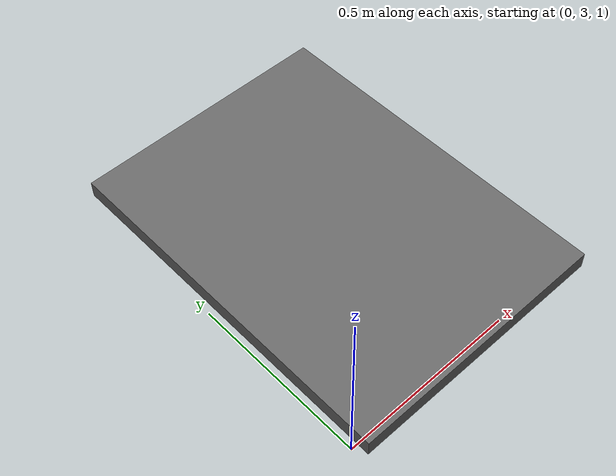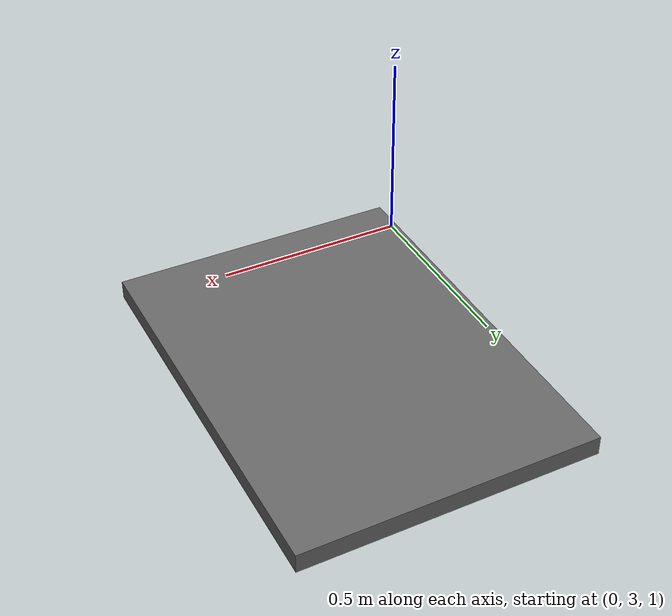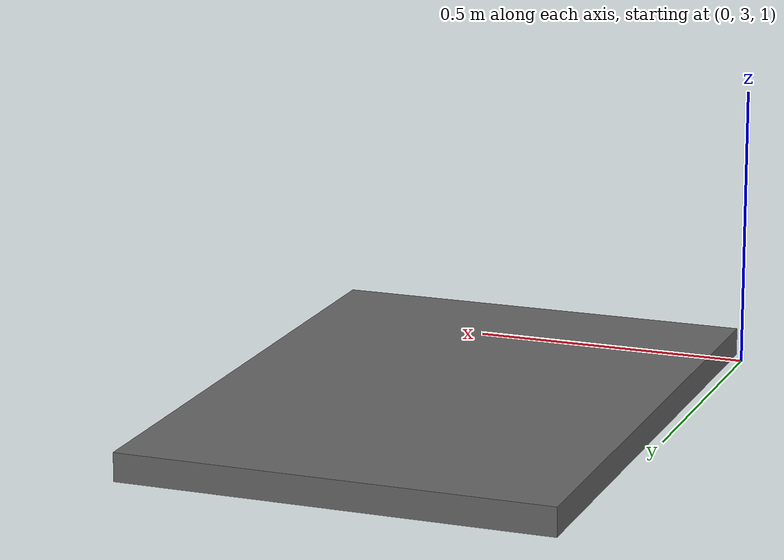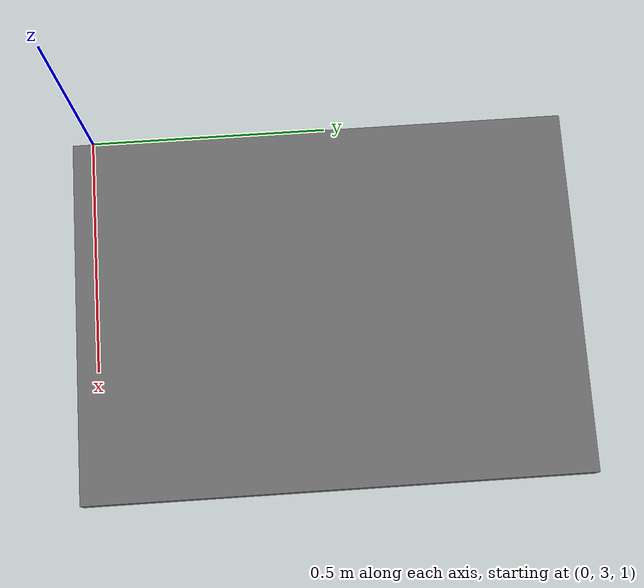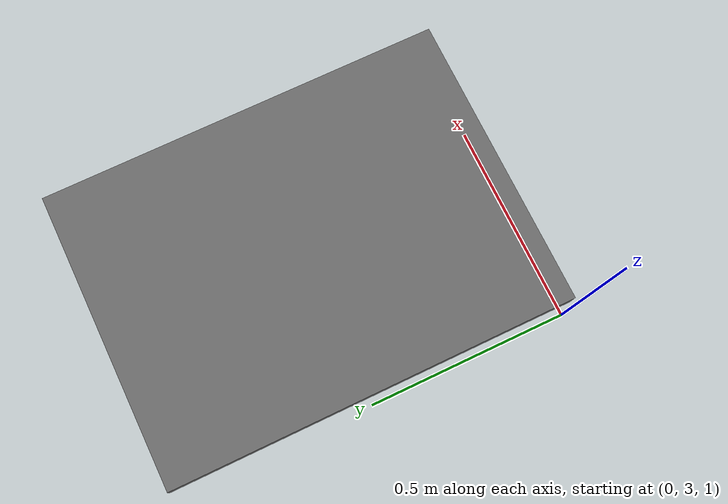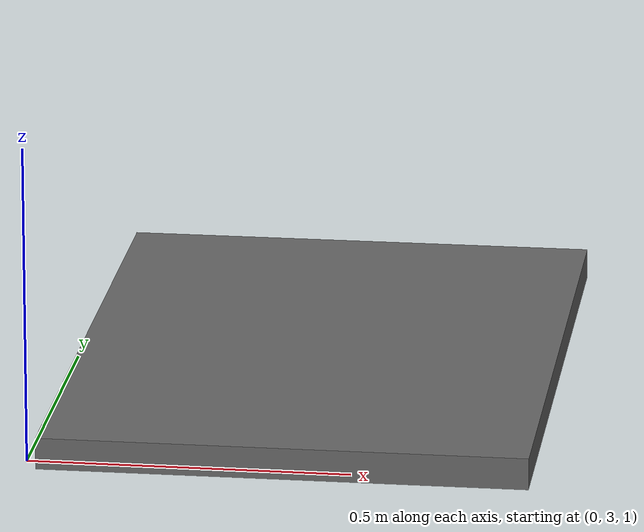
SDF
<?xml version="1.0" ?>
<!-- tmp sdf file generated from LISDF -->
<sdf version="1.9">
  <world name="tmp_world">

<model name="sink_counter_right">
  <static>True</static>
  <pose>0.3970000147819519 3.4839999675750732 1.024999976158142 0.0 -0.0 0.0</pose>
  <link name="box">

    <inertial>
      <mass>0</mass>
      <pose>0.0 0.0 0.0 0.0 -0.0 0.0</pose>
      <inertia>
        <ixx>0</ixx>
        <ixy>0</ixy>
        <ixz>0</ixz>
        <iyy>0</iyy>
        <iyz>0</iyz>
        <izz>0</izz>
      </inertia>
    </inertial>
    <collision name="box_collision">>
      <pose>0.0 0.0 0.0 0.0 -0.0 0.0</pose>
      <geometry>
        <box>
          <size>0.7559999823570251 1.0369999408721924 0.05000000074505806</size>
        </box>
      </geometry>

    </collision>
    <visual name="box_visual">
      <pose>0.0 0.0 0.0 0.0 -0.0 0.0</pose>
      <geometry>
        <box>
          <size>0.7559999823570251 1.0369999408721924 0.05000000074505806</size>
        </box>
      </geometry>
      <material>
        <ambient>1.0 1.0 1.0 1.0</ambient>
        <diffuse>0.4000000059604645 0.4000000059604645 0.4000000059604645 1.0</diffuse>
        <specular>0.0 0.0 0.0 1.0</specular>
        <emissive>0.0 0.0 0.0 1.0</emissive>
      </material>
      <cast_shadows>True</cast_shadows>
    </visual>
    <self_collide>True</self_collide>
  </link>

</model>

  </world>
</sdf>
